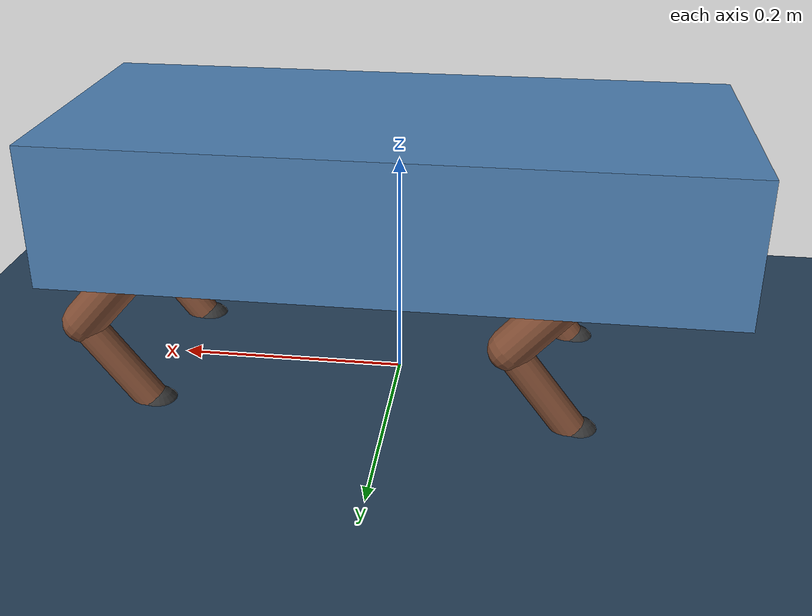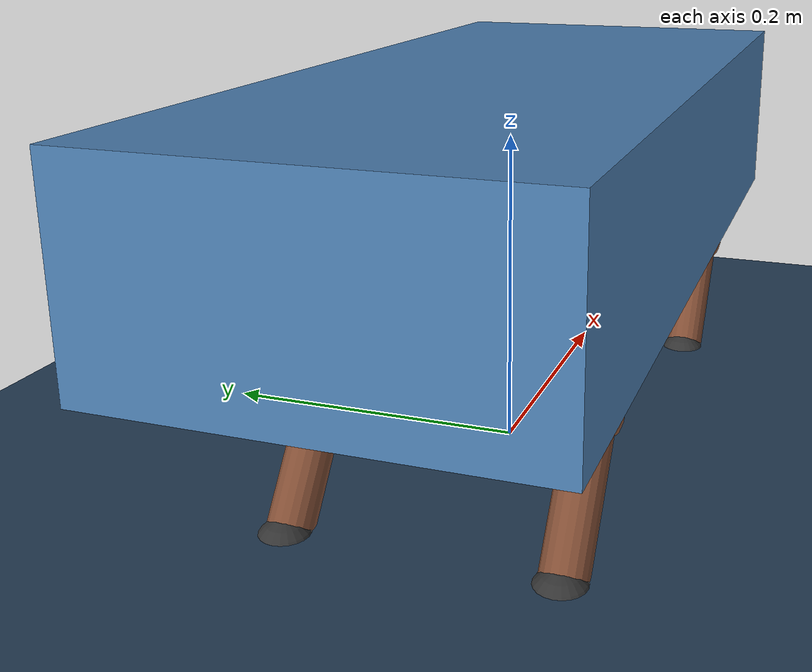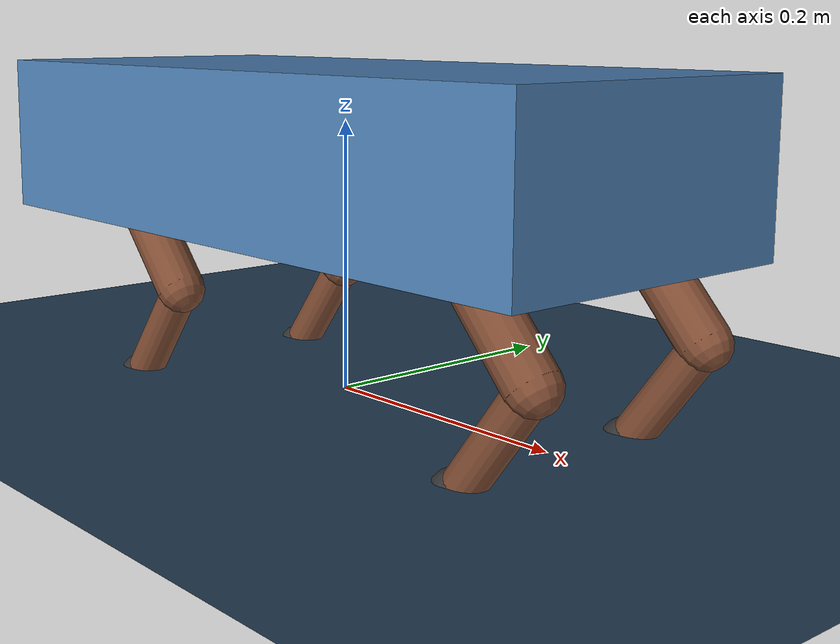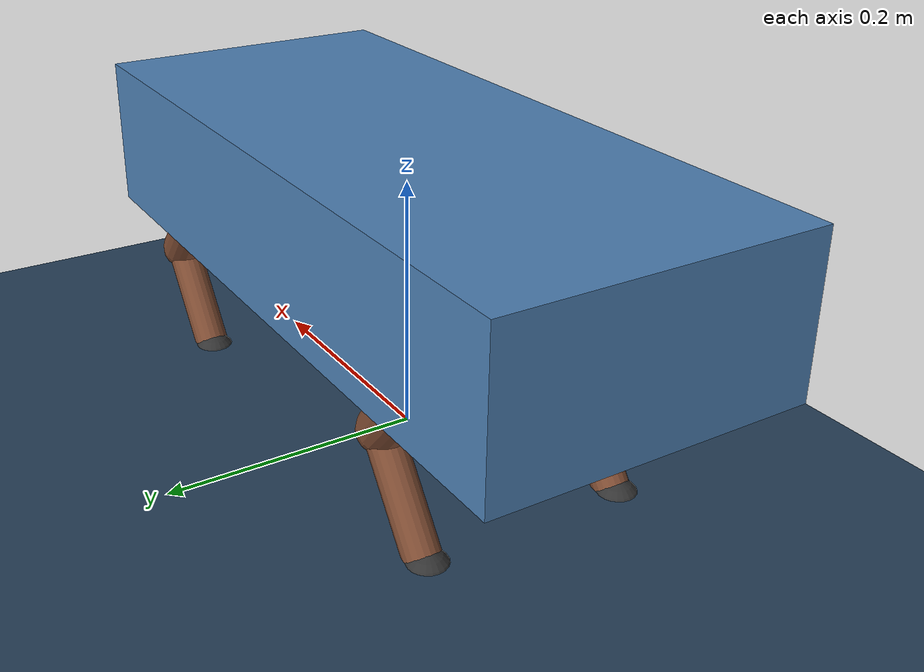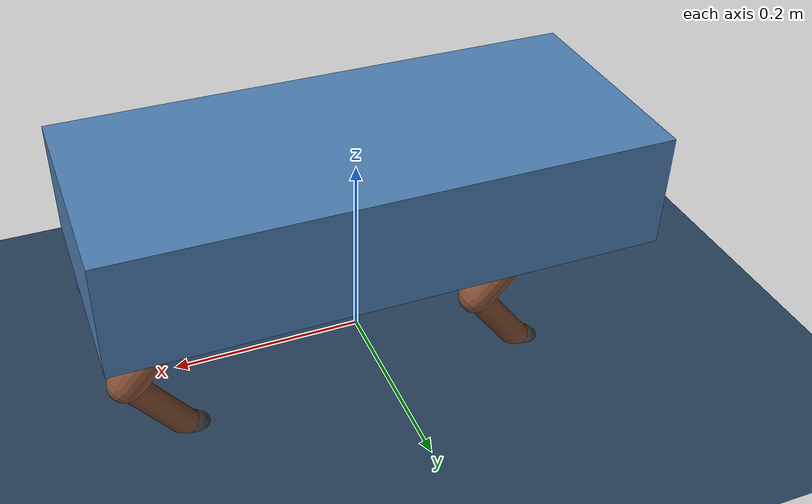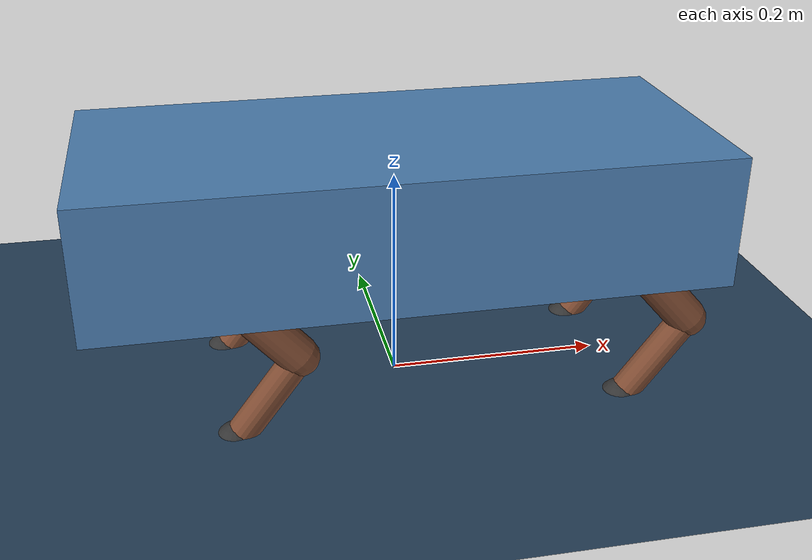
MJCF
<mujoco model="quadruped_dog_legs_fixed">
  <compiler angle="radian" autolimits="true"/>

  <option cone="elliptic" impratio="100" timestep="0.005"/>

  <default>
    <joint armature="0.01" damping="1" frictionloss="0.05"/>
    <geom friction="0.8" margin="0.001" solimp="0.9 0.95 0.001" solref="0.02 1"/>
    <position kp="50" forcerange="-20 20"/>  <!-- Reduced gains -->
  </default>

  <visual>
    <headlight diffuse="0.6 0.6 0.6" ambient="0.3 0.3 0.3" specular="0 0 0"/>
    <rgba haze="0.15 0.25 0.35 1"/>
    <global azimuth="120" elevation="-20"/>
  </visual>

  <asset>
    <texture type="2d" name="groundplane" builtin="checker" mark="edge"
      rgb1="0.2 0.3 0.4" rgb2="0.1 0.2 0.3" markrgb="0.8 0.8 0.8" width="300" height="300"/>
    <material name="groundplane" texture="groundplane" texuniform="true" texrepeat="5 5" reflectance="0.2"/>
    <material name="body_mat" rgba="0.3 0.5 0.7 1" specular="0.4"/>
    <material name="leg_mat" rgba="0.5 0.3 0.2 1" specular="0.3"/>
    <material name="foot_mat" rgba="0.2 0.2 0.2 1" specular="0.1"/>
  </asset>

  <worldbody>
    <camera name="side_cam" pos="0 -10 1" xyaxes="1 0 0 0 0 1"/>
    <camera name="top_cam" pos="0 0 5" xyaxes="1 0 0 0 1 0"/>
    <camera name="front_cam" pos="0 3 1" xyaxes="1 0 0 0 0 1"/>
    <camera name="iso_cam" pos="3 3 2" xyaxes="-1 1 0 -0.5 -0.5 1"/>
    <light pos="0 0 1.5" dir="0 0 -1" directional="true"/>
    <geom name="floor" size="0 0 0.05" type="plane" material="groundplane"/>

    <!-- Main body (trunk) - LOWER CENTER OF MASS -->
    <body name="trunk" pos="0 0 0.18">  <!-- Lowered from 0.25 to 0.18 -->
      <freejoint/>

      <!-- More realistic inertia (lower COM) -->
      <inertial mass="4.0" pos="0 0 -0.02" diaginertia="0.04 0.06 0.06"/>

      <!-- Visual: box -->
      <geom name="trunk_vis" type="box" size="0.28 0.12 0.06" material="body_mat" group="0"/>
      <geom name="trunk_col" type="box" size="0.28 0.12 0.06" group="3" contype="1" conaffinity="1"/>

      <!-- ==================== FR LEG (Front Right) ==================== -->
      <body name="FR_hip" pos="0.18 -0.08 0">
        <joint name="FR_hip_joint" type="hinge" axis="0 0 1" range="-0.08 0.08" damping="1" stiffness="50"/>
        <inertial mass="0.4" pos="0 0 0" diaginertia="0.008 0.008 0.008"/>
        <geom name="FR_hip_vis" type="cylinder" size="0.025 0.025" fromto="0 0 0 0 0 -0.02" material="leg_mat"/>

        <body name="FR_thigh" pos="0 0 -0.02">
          <joint name="FR_thigh_joint" type="hinge" axis="0 1 0" range="-0.2 0.8" damping="0.8"/>
          <inertial mass="0.6" pos="0.04 0 -0.07" diaginertia="0.015 0.015 0.008"/>
          <geom name="FR_thigh_vis" type="capsule" size="0.018" fromto="0 0 0 0.08 0 -0.09" material="leg_mat"/>
          <geom name="FR_thigh_col" type="capsule" size="0.015" fromto="0 0 0 0.08 0 -0.09" group="3" contype="1" conaffinity="1"/>

          <body name="FR_calf" pos="0.08 0 -0.09">
            <joint name="FR_calf_joint" type="hinge" axis="0 1 0" range="-1.0 0.2" damping="0.6"/>
            <inertial mass="0.3" pos="-0.03 0 -0.05" diaginertia="0.006 0.006 0.003"/>
            <geom name="FR_calf_vis" type="capsule" size="0.014" fromto="0 0 0 -0.06 0 -0.08" material="leg_mat"/>
            <geom name="FR_calf_col" type="capsule" size="0.012" fromto="0 0 0 -0.06 0 -0.08" group="3" contype="1" conaffinity="1"/>

            <geom name="FR_foot_vis" type="sphere" size="0.018" pos="-0.06 0 -0.08" material="foot_mat"/>
            <geom name="FR_foot_col" type="sphere" size="0.018" pos="-0.06 0 -0.08" group="3" contype="1" conaffinity="1" friction="0.9"/>
          </body>
        </body>
      </body>

      <!-- ==================== FL LEG (Front Left) ==================== -->
      <body name="FL_hip" pos="0.18 0.08 0">
        <joint name="FL_hip_joint" type="hinge" axis="0 0 1" range="-0.08 0.08" damping="1" stiffness="50"/>
        <inertial mass="0.4" pos="0 0 0" diaginertia="0.008 0.008 0.008"/>
        <geom name="FL_hip_vis" type="cylinder" size="0.025 0.025" fromto="0 0 0 0 0 -0.02" material="leg_mat"/>

        <body name="FL_thigh" pos="0 0 -0.02">
          <joint name="FL_thigh_joint" type="hinge" axis="0 1 0" range="-0.2 0.8" damping="0.8"/>
          <inertial mass="0.6" pos="0.04 0 -0.07" diaginertia="0.015 0.015 0.008"/>
          <geom name="FL_thigh_vis" type="capsule" size="0.018" fromto="0 0 0 0.08 0 -0.09" material="leg_mat"/>
          <geom name="FL_thigh_col" type="capsule" size="0.015" fromto="0 0 0 0.08 0 -0.09" group="3" contype="1" conaffinity="1"/>

          <body name="FL_calf" pos="0.08 0 -0.09">
            <joint name="FL_calf_joint" type="hinge" axis="0 1 0" range="-1.0 0.2" damping="0.6"/>
            <inertial mass="0.3" pos="-0.03 0 -0.05" diaginertia="0.006 0.006 0.003"/>
            <geom name="FL_calf_vis" type="capsule" size="0.014" fromto="0 0 0 -0.06 0 -0.08" material="leg_mat"/>
            <geom name="FL_calf_col" type="capsule" size="0.012" fromto="0 0 0 -0.06 0 -0.08" group="3" contype="1" conaffinity="1"/>

            <geom name="FL_foot_vis" type="sphere" size="0.018" pos="-0.06 0 -0.08" material="foot_mat"/>
            <geom name="FL_foot_col" type="sphere" size="0.018" pos="-0.06 0 -0.08" group="3" contype="1" conaffinity="1" friction="0.9"/>
          </body>
        </body>
      </body>

      <!-- ==================== RR LEG (Rear Right) ==================== -->
      <body name="RR_hip" pos="-0.18 -0.08 0">
        <joint name="RR_hip_joint" type="hinge" axis="0 0 1" range="-0.08 0.08" damping="1" stiffness="50"/>
        <inertial mass="0.4" pos="0 0 0" diaginertia="0.008 0.008 0.008"/>
        <geom name="RR_hip_vis" type="cylinder" size="0.025 0.025" fromto="0 0 0 0 0 -0.02" material="leg_mat"/>

        <body name="RR_thigh" pos="0 0 -0.02">
          <joint name="RR_thigh_joint" type="hinge" axis="0 1 0" range="-0.2 0.8" damping="0.8"/>
          <inertial mass="0.6" pos="0.04 0 -0.07" diaginertia="0.015 0.015 0.008"/>
          <geom name="RR_thigh_vis" type="capsule" size="0.018" fromto="0 0 0 0.08 0 -0.09" material="leg_mat"/>
          <geom name="RR_thigh_col" type="capsule" size="0.015" fromto="0 0 0 0.08 0 -0.09" group="3" contype="1" conaffinity="1"/>

          <body name="RR_calf" pos="0.08 0 -0.09">
            <joint name="RR_calf_joint" type="hinge" axis="0 1 0" range="-1.0 0.2" damping="0.6"/>
            <inertial mass="0.3" pos="-0.03 0 -0.05" diaginertia="0.006 0.006 0.003"/>
            <geom name="RR_calf_vis" type="capsule" size="0.014" fromto="0 0 0 -0.06 0 -0.08" material="leg_mat"/>
            <geom name="RR_calf_col" type="capsule" size="0.012" fromto="0 0 0 -0.06 0 -0.08" group="3" contype="1" conaffinity="1"/>

            <geom name="RR_foot_vis" type="sphere" size="0.018" pos="-0.06 0 -0.08" material="foot_mat"/>
            <geom name="RR_foot_col" type="sphere" size="0.018" pos="-0.06 0 -0.08" group="3" contype="1" conaffinity="1" friction="0.9"/>
          </body>
        </body>
      </body>

      <!-- ==================== RL LEG (Rear Left) ==================== -->
      <body name="RL_hip" pos="-0.18 0.08 0">
        <joint name="RL_hip_joint" type="hinge" axis="0 0 1" range="-0.08 0.08" damping="1" stiffness="50"/>
        <inertial mass="0.4" pos="0 0 0" diaginertia="0.008 0.008 0.008"/>
        <geom name="RL_hip_vis" type="cylinder" size="0.025 0.025" fromto="0 0 0 0 0 -0.02" material="leg_mat"/>

        <body name="RL_thigh" pos="0 0 -0.02">
          <joint name="RL_thigh_joint" type="hinge" axis="0 1 0" range="-0.2 0.8" damping="0.8"/>
          <inertial mass="0.6" pos="0.04 0 -0.07" diaginertia="0.015 0.015 0.008"/>
          <geom name="RL_thigh_vis" type="capsule" size="0.018" fromto="0 0 0 0.08 0 -0.09" material="leg_mat"/>
          <geom name="RL_thigh_col" type="capsule" size="0.015" fromto="0 0 0 0.08 0 -0.09" group="3" contype="1" conaffinity="1"/>

          <body name="RL_calf" pos="0.08 0 -0.09">
            <joint name="RL_calf_joint" type="hinge" axis="0 1 0" range="-1.0 0.2" damping="0.6"/>
            <inertial mass="0.3" pos="-0.03 0 -0.05" diaginertia="0.006 0.006 0.003"/>
            <geom name="RL_calf_vis" type="capsule" size="0.014" fromto="0 0 0 -0.06 0 -0.08" material="leg_mat"/>
            <geom name="RL_calf_col" type="capsule" size="0.012" fromto="0 0 0 -0.06 0 -0.08" group="3" contype="1" conaffinity="1"/>

            <geom name="RL_foot_vis" type="sphere" size="0.018" pos="-0.06 0 -0.08" material="foot_mat"/>
            <geom name="RL_foot_col" type="sphere" size="0.018" pos="-0.06 0 -0.08" group="3" contype="1" conaffinity="1" friction="0.9"/>
          </body>
        </body>
      </body>
    </body>
  </worldbody>

  <actuator>
    <!-- Reduced gains to prevent flipping -->
    <position name="FR_hip_act" joint="FR_hip_joint" kp="40" forcerange="-8 8"/>
    <position name="FL_hip_act" joint="FL_hip_joint" kp="40" forcerange="-8 8"/>
    <position name="RR_hip_act" joint="RR_hip_joint" kp="40" forcerange="-8 8"/>
    <position name="RL_hip_act" joint="RL_hip_joint" kp="40" forcerange="-8 8"/>

    <position name="FR_thigh_act" joint="FR_thigh_joint" kp="60"/>
    <position name="FL_thigh_act" joint="FL_thigh_joint" kp="60"/>
    <position name="RR_thigh_act" joint="RR_thigh_joint" kp="60"/>
    <position name="RL_thigh_act" joint="RL_thigh_joint" kp="60"/>

    <position name="FR_calf_act" joint="FR_calf_joint" kp="50"/>
    <position name="FL_calf_act" joint="FL_calf_joint" kp="50"/>
    <position name="RR_calf_act" joint="RR_calf_joint" kp="50"/>
    <position name="RL_calf_act" joint="RL_calf_joint" kp="50"/>
  </actuator>

  <keyframe>
    <key name="home" qpos="0 0 0.18 1 0 0 0  0 0.3 -0.5  0 0.3 -0.5  0 0.3 -0.5  0 0.3 -0.5"/>
  </keyframe>
</mujoco>
